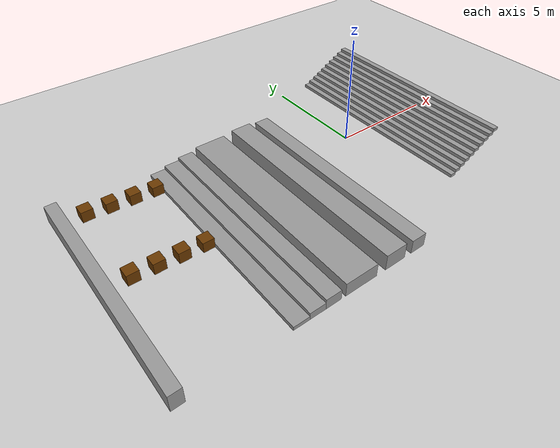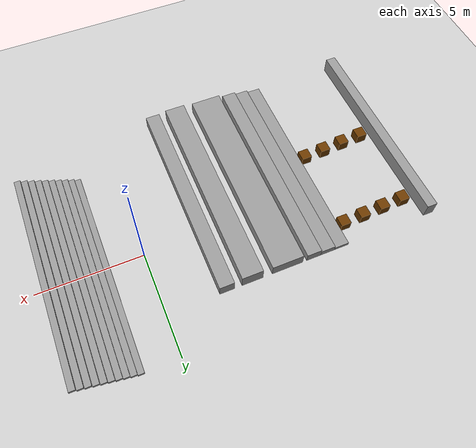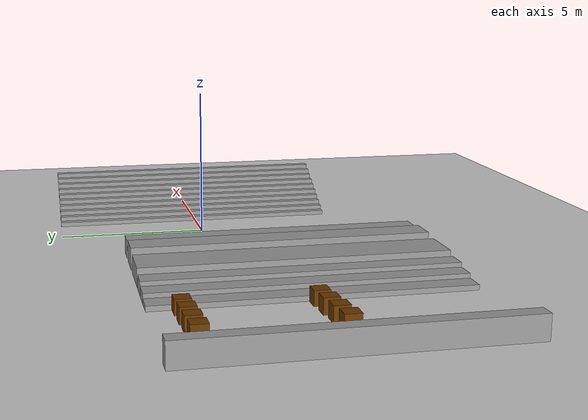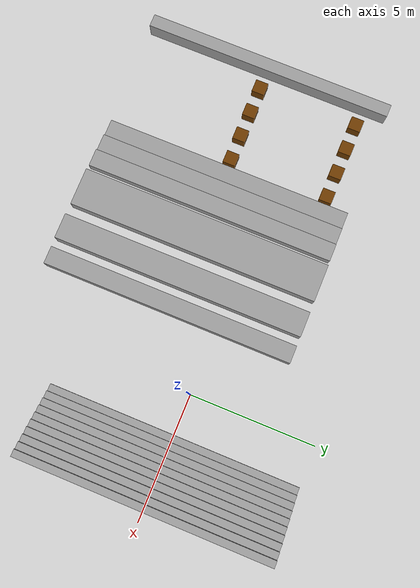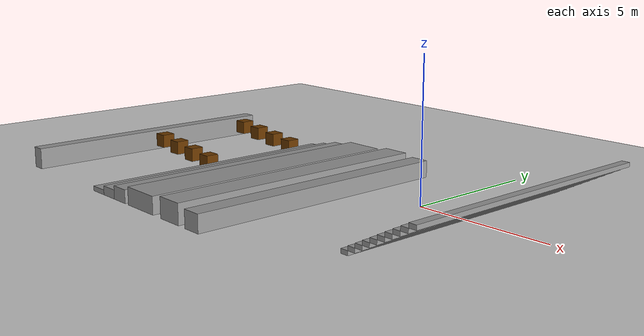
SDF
<?xml version="1.0" ?>
<sdf version="1.5">
    <world name="default">

        <gravity>0 0 -9.8</gravity>
        <physics default="1" name="default_physics" type="simbody">
        <real_time_update_rate>1000.0</real_time_update_rate>
        <max_contacts>8</max_contacts>
        <simbody>
            <accuracy>0.001</accuracy>
            <min_step_size>0.0005</min_step_size>
            <contact>
            <dissipation>100.0</dissipation>
            <viscous_friction>1</viscous_friction>
            <override_impact_capture_velocity>0.001</override_impact_capture_velocity>
            <override_stiction_transition_velocity>0.001</override_stiction_transition_velocity>
            <stiffness>1000.0</stiffness>
            <plastic_coef_restitution>0.1</plastic_coef_restitution>
            <dynamic_friction>0.9</dynamic_friction>
            <static_friction>0.9</static_friction>
            <plastic_impact_velocity>50</plastic_impact_velocity>
            </contact>
            <max_transient_velocity>0.5</max_transient_velocity>
        </simbody>
        <max_step_size>0.001</max_step_size>
        <real_time_factor>1.0</real_time_factor>
        </physics>
        <scene>
        <sky>
            <clouds>
                <speed>12</speed>
            </clouds>
        </sky>
        </scene>
        <!-- A global light source -->
        <include>
            <uri>model://sun</uri>
        </include>
        <!-- A ground plane -->
        <include>
            <uri>model://ground_plane</uri>
        </include>
        <!-- environment blocks, obstacles or stairs -->
        <model name="static_environment">
        <static>true</static>
            <link name="static_box">
                <pose>-12 2 0.5 0 0 0</pose>
                <collision name="static_box_collision">
                    <geometry>
                        <box>
                            <size>0.5 0.5 0.5</size>
                        </box>
                    </geometry>
                </collision>
                <visual name="static_box_visual">
                    <geometry>
                        <box>
                            <size>0.5 0.5 0.5</size>
                        </box>
                    </geometry>
                    <material>
                        <ambient>0.2 0.2 0.2 1.0</ambient>
                        <diffuse>.421 0.225 0.0 1.0</diffuse>
                    </material>
                </visual>
            </link>

            <link name="static_box1">
                <pose>-11 2 0.4 0 0 0</pose>
                <collision name="static_box1_collision">
                    <geometry>
                        <box>
                            <size>0.5 0.5 0.5</size>
                        </box>
                    </geometry>
                </collision>
                <visual name="static_box1_visual">
                    <geometry>
                        <box>
                            <size>0.5 0.5 0.5</size>
                        </box>
                    </geometry>
                    <material>
                        <ambient>0.2 0.2 0.2 1.0</ambient>
                        <diffuse>.421 0.225 0.0 1.0</diffuse>
                    </material>
                </visual>
            </link>

            <link name="static_box2">
                <pose>-10 2 0.3 0 0 0</pose>
                <collision name="static_box2_collision">
                    <geometry>
                        <box>
                            <size>0.5 0.5 0.5</size>
                        </box>
                    </geometry>
                </collision>
                <visual name="static_box2_visual">
                    <geometry>
                        <box>
                            <size>0.5 0.5 0.5</size>
                        </box>
                    </geometry>
                    <material>
                        <ambient>0.2 0.2 0.2 1.0</ambient>
                        <diffuse>.421 0.225 0.0 1.0</diffuse>
                    </material>
                </visual>
            </link>
            <link name="static_box3">
                <pose>-9 2 0.2 0 0 0</pose>
                <collision name="static_box3_collision">
                    <geometry>
                        <box>
                            <size>0.5 0.5 0.5</size>
                        </box>
                    </geometry>
                </collision>
                <visual name="static_box3_visual">
                    <geometry>
                        <box>
                            <size>0.5 0.5 0.5</size>
                        </box>
                    </geometry>
                    <material>
                        <ambient>0.2 0.2 0.2 1.0</ambient>
                        <diffuse>.421 0.225 0.0 1.0</diffuse>
                    </material>
                </visual>
            </link>

            <link name="static_box4">
                <pose>-12 -2 0.5 0 0 0</pose>
                <collision name="static_box4_collision">
                    <geometry>
                        <box>
                            <size>0.5 0.5 0.5</size>
                        </box>
                    </geometry>
                </collision>
                <visual name="static_box4_visual">
                    <geometry>
                        <box>
                            <size>0.5 0.5 0.5</size>
                        </box>
                    </geometry>
                    <material>
                        <ambient>0.2 0.2 0.2 1.0</ambient>
                        <diffuse>.421 0.225 0.0 1.0</diffuse>
                    </material>
                </visual>
            </link>

            <link name="static_box5">
                <pose>-11 -2 0.4 0 0 0</pose>
                <collision name="static_box5_collision">
                    <geometry>
                        <box>
                            <size>0.5 0.5 0.5</size>
                        </box>
                    </geometry>
                </collision>
                <visual name="static_box5_visual">
                    <geometry>
                        <box>
                            <size>0.5 0.5 0.5</size>
                        </box>
                    </geometry>
                    <material>
                        <ambient>0.2 0.2 0.2 1.0</ambient>
                        <diffuse>.421 0.225 0.0 1.0</diffuse>
                    </material>
                </visual>
            </link>

            <link name="static_box6">
                <pose>-10 -2 0.3 0 0 0</pose>
                <collision name="static_box6_collision">
                    <geometry>
                        <box>
                            <size>0.5 0.5 0.5</size>
                        </box>
                    </geometry>
                </collision>
                <visual name="static_box6_visual">
                    <geometry>
                        <box>
                            <size>0.5 0.5 0.5</size>
                        </box>
                    </geometry>
                    <material>
                        <ambient>0.2 0.2 0.2 1.0</ambient>
                        <diffuse>.421 0.225 0.0 1.0</diffuse>
                    </material>
                </visual>
            </link>

            <link name="static_box7">
                <pose>-9 -2 0.2 0 0 0</pose>
                <collision name="static_box7_collision">
                    <geometry>
                        <box>
                            <size>0.5 0.5 0.5</size>
                        </box>
                    </geometry>
                </collision>
                <visual name="static_box7_visual">
                    <geometry>
                        <box>
                            <size>0.5 0.5 0.5</size>
                        </box>
                    </geometry>
                    <material>
                        <ambient>0.2 0.2 0.2 1.0</ambient>
                        <diffuse>.421 0.225 0.0 1.0</diffuse>
                    </material>
                </visual>
            </link>

            <link name='Stairs'>
                <pose>3 0 0 0 0 0</pose>
                <scale>1 1 1</scale>
                <visual name='Stairs_Visual_0'>
                    <pose>-1.26 -0 0.075 0 -0 1.5708</pose>
                    <geometry>
                    <box>
                        <size>10 0.28 0.15</size>
                    </box>
                    </geometry>
                    <material>
                    <script>
                        <uri>file://media/materials/scripts/gazebo.material</uri>
                        <name>Gazebo/Grey</name>
                    </script>
                    <ambient>1 1 1 1</ambient>
                    </material>
                    <meta>
                    <layer>0</layer>
                    </meta>
                </visual>
                <collision name='Stairs_Collision_0'>
                    <geometry>
                    <box>
                        <size>10 0.28 0.15</size>
                    </box>
                    </geometry>
                    <pose>-1.26 -0 0.075 0 -0 1.5708</pose>
                </collision>

                <visual name='Stairs_Visual_1'>
                    <pose>-0.98 -0 0.225 0 -0 1.5708</pose>
                    <geometry>
                    <box>
                        <size>10 0.28 0.15</size>
                    </box>
                    </geometry>
                    <material>
                    <script>
                        <uri>file://media/materials/scripts/gazebo.material</uri>
                        <name>Gazebo/Grey</name>
                    </script>
                    <ambient>1 1 1 1</ambient>
                    </material>
                    <meta>
                    <layer>0</layer>
                    </meta>
                </visual>
                <collision name='Stairs_Collision_1'>
                    <geometry>
                    <box>
                        <size>10 0.28 0.15</size>
                    </box>
                    </geometry>
                    <pose>-0.98 -0 0.225 0 -0 1.5708</pose>
                </collision>
                <visual name='Stairs_Visual_2'>
                    <pose>-0.7 -0 0.375 0 -0 1.5708</pose>
                    <geometry>
                    <box>
                        <size>10 0.28 0.15</size>
                    </box>
                    </geometry>
                    <material>
                    <script>
                        <uri>file://media/materials/scripts/gazebo.material</uri>
                        <name>Gazebo/Grey</name>
                    </script>
                    <ambient>1 1 1 1</ambient>
                    </material>
                    <meta>
                    <layer>0</layer>
                    </meta>
                </visual>
                <collision name='Stairs_Collision_2'>
                    <geometry>
                    <box>
                        <size>10 0.28 0.15</size>
                    </box>
                    </geometry>
                    <pose>-0.7 -0 0.375 0 -0 1.5708</pose>
                </collision>
                <visual name='Stairs_Visual_3'>
                    <pose>-0.42 -0 0.525 0 -0 1.5708</pose>
                    <geometry>
                    <box>
                        <size>10 0.28 0.15</size>
                    </box>
                    </geometry>
                    <material>
                    <script>
                        <uri>file://media/materials/scripts/gazebo.material</uri>
                        <name>Gazebo/Grey</name>
                    </script>
                    <ambient>1 1 1 1</ambient>
                    </material>
                    <meta>
                    <layer>0</layer>
                    </meta>
                </visual>
                <collision name='Stairs_Collision_3'>
                    <geometry>
                    <box>
                        <size>10 0.28 0.15</size>
                    </box>
                    </geometry>
                    <pose>-0.42 -0 0.525 0 -0 1.5708</pose>
                </collision>
                <visual name='Stairs_Visual_4'>
                    <pose>-0.14 -0 0.675 0 -0 1.5708</pose>
                    <geometry>
                    <box>
                        <size>10 0.28 0.15</size>
                    </box>
                    </geometry>
                    <material>
                    <script>
                        <uri>file://media/materials/scripts/gazebo.material</uri>
                        <name>Gazebo/Grey</name>
                    </script>
                    <ambient>1 1 1 1</ambient>
                    </material>
                    <meta>
                    <layer>0</layer>
                    </meta>
                </visual>
                <collision name='Stairs_Collision_4'>
                    <geometry>
                    <box>
                        <size>10 0.28 0.15</size>
                    </box>
                    </geometry>
                    <pose>-0.14 -0 0.675 0 -0 1.5708</pose>
                </collision>
                <visual name='Stairs_Visual_5'>
                    <pose>0.14 0 0.825 0 -0 1.5708</pose>
                    <geometry>
                    <box>
                        <size>10 0.28 0.15</size>
                    </box>
                    </geometry>
                    <material>
                    <script>
                        <uri>file://media/materials/scripts/gazebo.material</uri>
                        <name>Gazebo/Grey</name>
                    </script>
                    <ambient>1 1 1 1</ambient>
                    </material>
                    <meta>
                    <layer>0</layer>
                    </meta>
                </visual>
                <collision name='Stairs_Collision_5'>
                    <geometry>
                    <box>
                        <size>10 0.28 0.15</size>
                    </box>
                    </geometry>
                    <pose>0.14 0 0.825 0 -0 1.5708</pose>
                </collision>
                <visual name='Stairs_Visual_6'>
                    <pose>0.42 0 0.975 0 -0 1.5708</pose>
                    <geometry>
                    <box>
                        <size>10 0.28 0.15</size>
                    </box>
                    </geometry>
                    <material>
                    <script>
                        <uri>file://media/materials/scripts/gazebo.material</uri>
                        <name>Gazebo/Grey</name>
                    </script>
                    <ambient>1 1 1 1</ambient>
                    </material>
                    <meta>
                    <layer>0</layer>
                    </meta>
                </visual>
                <collision name='Stairs_Collision_6'>
                    <geometry>
                    <box>
                        <size>10 0.28 0.15</size>
                    </box>
                    </geometry>
                    <pose>0.42 0 0.975 0 -0 1.5708</pose>
                </collision>
                <visual name='Stairs_Visual_7'>
                    <pose>0.7 0 1.125 0 -0 1.5708</pose>
                    <geometry>
                    <box>
                        <size>10 0.28 0.15</size>
                    </box>
                    </geometry>
                    <material>
                    <script>
                        <uri>file://media/materials/scripts/gazebo.material</uri>
                        <name>Gazebo/Grey</name>
                    </script>
                    <ambient>1 1 1 1</ambient>
                    </material>
                    <meta>
                    <layer>0</layer>
                    </meta>
                </visual>
                <collision name='Stairs_Collision_7'>
                    <geometry>
                    <box>
                        <size>10 0.28 0.15</size>
                    </box>
                    </geometry>
                    <pose>0.7 0 1.125 0 -0 1.5708</pose>
                </collision>
                <visual name='Stairs_Visual_8'>
                    <pose>0.98 0 1.275 0 -0 1.5708</pose>
                    <geometry>
                    <box>
                        <size>10 0.28 0.15</size>
                    </box>
                    </geometry>
                    <material>
                    <script>
                        <uri>file://media/materials/scripts/gazebo.material</uri>
                        <name>Gazebo/Grey</name>
                    </script>
                    <ambient>1 1 1 1</ambient>
                    </material>
                    <meta>
                    <layer>0</layer>
                    </meta>
                </visual>
                <collision name='Stairs_Collision_8'>
                    <geometry>
                    <box>
                        <size>10 0.28 0.15</size>
                    </box>
                    </geometry>
                    <pose>0.98 0 1.275 0 -0 1.5708</pose>
                </collision>
                <visual name='Stairs_Visual_9'>
                    <pose>1.26 0 1.425 0 -0 1.5708</pose>
                    <geometry>
                    <box>
                        <size>10 0.28 0.15</size>
                    </box>
                    </geometry>
                    <material>
                    <script>
                        <uri>file://media/materials/scripts/gazebo.material</uri>
                        <name>Gazebo/Grey</name>
                    </script>
                    <ambient>1 1 1 1</ambient>
                    </material>
                    <meta>
                    <layer>0</layer>
                    </meta>
                </visual>
                <collision name='Stairs_Collision_9'>
                    <geometry>
                    <box>
                        <size>10 0.28 0.15</size>
                    </box>
                    </geometry>
                    <pose>1.26 0 1.425 0 -0 1.5708</pose>
                </collision>

                <visual name='wall1'>
                    <pose>-11.4 -2 0 0 -0 1.5708</pose>
                    <geometry>
                    <box>
                        <size>10 0.7 0.3</size>
                    </box>
                    </geometry>
                    <material>
                    <script>
                        <uri>file://media/materials/scripts/gazebo.material</uri>
                        <name>Gazebo/Grey</name>
                    </script>
                    <ambient>1 1 1 1</ambient>
                    </material>
                    <meta>
                    <layer>0</layer>
                    </meta>
                </visual>
                <collision name='wall1_Collision'>
                    <geometry>
                    <box>
                        <size>10 0.7 0.3</size>
                    </box>
                    </geometry>
                    <pose>-11.4 -2 0 0 -0 1.5708</pose>
                </collision>
                <visual name='wall2'>
                    <pose>-10.7 -2 0 0 -0 1.5708</pose>
                    <geometry>
                    <box>
                        <size>10 0.7 0.6</size>
                    </box>
                    </geometry>
                    <material>
                    <script>
                        <uri>file://media/materials/scripts/gazebo.material</uri>
                        <name>Gazebo/Grey</name>
                    </script>
                    <ambient>1 1 1 1</ambient>
                    </material>
                    <meta>
                    <layer>0</layer>
                    </meta>
                </visual>
                <collision name='wall2_Collision'>
                    <geometry>
                    <box>
                        <size>10 0.7 0.6</size>
                    </box>
                    </geometry>
                    <pose>-10.7 -2 0 0 -0 1.5708</pose>
                </collision>

                <visual name='wall3'>
                    <pose>-10 -2 0 0 -0 1.5708</pose>
                    <geometry>
                    <box>
                        <size>10 0.7 0.9</size>
                    </box>
                    </geometry>
                    <material>
                    <script>
                        <uri>file://media/materials/scripts/gazebo.material</uri>
                        <name>Gazebo/Grey</name>
                    </script>
                    <ambient>1 1 1 1</ambient>
                    </material>
                    <meta>
                    <layer>0</layer>
                    </meta>
                </visual>
                <collision name='wall3_Collision'>
                    <geometry>
                    <box>
                        <size>10 0.7 0.9</size>
                    </box>
                    </geometry>
                    <pose>-10 -2 0 0 -0 1.5708</pose>
                </collision>

                <visual name='wall4'>
                    <pose>-8.7 -2 0 0 -0 1.5708</pose>
                    <geometry>
                    <box>
                        <size>10 1.5 1.2</size>
                    </box>
                    </geometry>
                    <material>
                    <script>
                        <uri>file://media/materials/scripts/gazebo.material</uri>
                        <name>Gazebo/Grey</name>
                    </script>
                    <ambient>1 1 1 1</ambient>
                    </material>
                    <meta>
                    <layer>0</layer>
                    </meta>
                </visual>
                <collision name='wall4_Collision'>
                    <geometry>
                    <box>
                        <size>10 1.5 1.2</size>
                    </box>
                    </geometry>
                    <pose>-8.7 -2 0 0 -0 1.5708</pose>
                </collision>

                <visual name='gap1'>
                    <pose>-7 -2 0 0 -0 1.5708</pose>
                    <geometry>
                    <box>
                        <size>10 1 1.4</size>
                    </box>
                    </geometry>
                    <material>
                    <script>
                        <uri>file://media/materials/scripts/gazebo.material</uri>
                        <name>Gazebo/Grey</name>
                    </script>
                    <ambient>1 1 1 1</ambient>
                    </material>
                    <meta>
                    <layer>0</layer>
                    </meta>
                </visual>
                <collision name='gap1_Collision'>
                    <geometry>
                    <box>
                        <size>10 1 1.4</size>
                    </box>
                    </geometry>
                    <pose>-7 -2 0 0 -0 1.5708</pose>
                </collision>

                <visual name='gap2'>
                    <pose>-5.8 -2 0 0 -0 1.5708</pose>
                    <geometry>
                    <box>
                        <size>10 0.7 1.2</size>
                    </box>
                    </geometry>
                    <material>
                    <script>
                        <uri>file://media/materials/scripts/gazebo.material</uri>
                        <name>Gazebo/Grey</name>
                    </script>
                    <ambient>1 1 1 1</ambient>
                    </material>
                    <meta>
                    <layer>0</layer>
                    </meta>
                </visual>
                <collision name='gap2_Collision'>
                    <geometry>
                    <box>
                        <size>10 0.7 1.2</size>
                    </box>
                    </geometry>
                    <pose>-5.8 -2 0 0 -0 1.5708</pose>
                </collision>

                <visual name='wall5'>
                    <pose>-16 -2 0 0 -0 1.5708</pose>
                    <geometry>
                    <box>
                        <size>10 0.5 1.5</size>
                    </box>
                    </geometry>
                    <material>
                    <script>
                        <uri>file://media/materials/scripts/gazebo.material</uri>
                        <name>Gazebo/Grey</name>
                    </script>
                    <ambient>1 1 1 1</ambient>
                    </material>
                    <meta>
                    <layer>0</layer>
                    </meta>
                </visual>
                <collision name='wall5_Collision'>
                    <geometry>
                    <box>
                        <size>10 0.5 1.5</size>
                    </box>
                    </geometry>
                    <pose>-16 -2 0 0 -0 1.5708</pose>
                </collision>

            </link>
        </model>

    </world>
</sdf>
